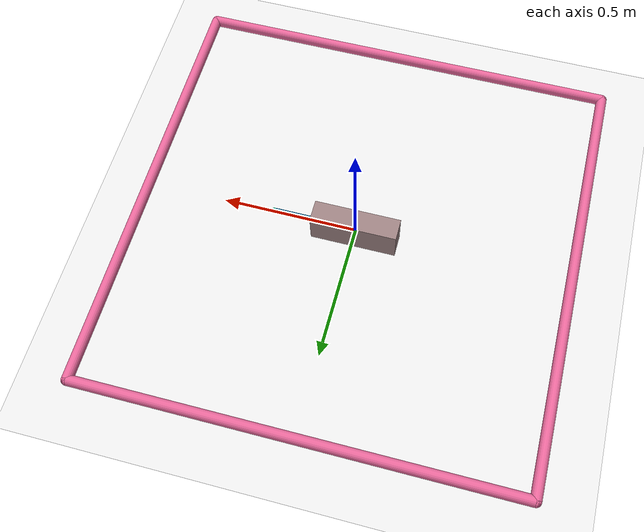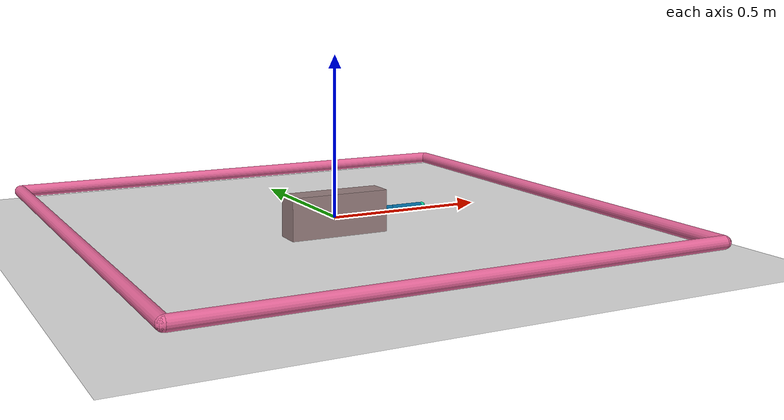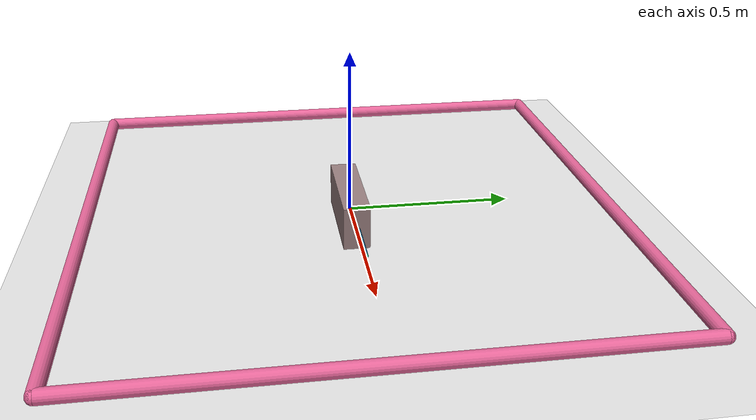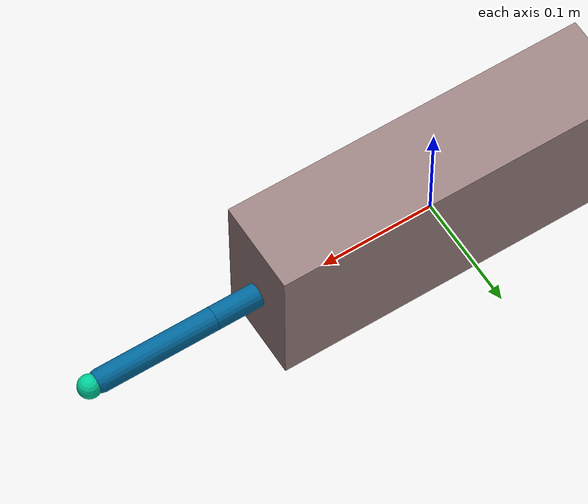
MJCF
<mujoco model="Robot">
	<compiler angle="radian" inertiafromgeom="true"
	              texturedir="textures/"
              meshdir="mesh/visual/"/>
	<default>
		<joint armature="1" damping="1" limited="true"/>
		<geom contype="0" friction="1 0.1 0.1" rgba="0.7 0.7 0 1"/>
	</default>
	<option gravity="0 0 -9.81" integrator="RK4" timestep="0.01"/>

	<asset>
		<mesh file="Part1.stl" name="bread_mesh1" scale="0.012 0.012 0.012"  />
		<mesh file="Part2.stl" name="bread_mesh2" scale="0.012 0.012 0.012"  />
		<mesh file="Part3.stl" name="bread_mesh3" scale="0.012 0.012 0.012"  />
		<mesh file="Part4.stl" name="bread_mesh4" scale="0.012 0.012 0.012"  />
		<mesh file="Part5.stl" name="bread_mesh5" scale="0.012 0.012 0.012"  />
		<mesh file="Part6.stl" name="bread_mesh6" scale="0.012 0.012 0.012"  />
		<mesh file="Part7.stl" name="bread_mesh7" scale="0.012 0.012 0.012"  />
		<mesh file="Part8.stl" name="bread_mesh8" scale="0.012 0.012 0.012"  />
		<mesh file="Part9.stl" name="bread_mesh9" scale="0.012 0.012 0.012"  />

		<!--Textures-->
		<texture type="skybox" builtin="gradient" rgb1="1 1 1" rgb2=".6 .8 1"  width="256" height="256"/>
	</asset>

	<worldbody>
		<!-- Arena -->

		<geom conaffinity="1" contype="1" name="ground" pos="0 0 -0.05" rgba="0.9 0.9 0.9 1" size="1 1 10" type="plane"/>

		<camera euler="0 0 0" fovy="40" name="rgb" pos="0 0 2"></camera>
		<camera euler="0 0 0" fovy="70" name="rgb1" pos="0 0.3 0.15"></camera>
		<camera euler="0.5 -0.5  -0.5" fovy="30" name="rgb2" pos="-1 -1 2"></camera>
		<camera euler="0.65 0.9 0.7" fovy="20" name="rgb3" pos="4.5  -2.0 3"></camera>

		<geom conaffinity="0" fromto="-.8 -.8 .01 .8 -.8 .01" name="sideS" rgba="0.9 0.4 0.6 1" size=".02" type="capsule"/>
		<geom conaffinity="0" fromto=" .8 -.8 .01 .8  .8 .01" name="sideE" rgba="0.9 0.4 0.6 1" size=".02" type="capsule"/>
		<geom conaffinity="0" fromto="-.8  .8 .01 .8  .8 .01" name="sideN" rgba="0.9 0.4 0.6 1" size=".02" type="capsule"/>
		<geom conaffinity="0" fromto="-.8 -.8 .01 -.8 .8 .01" name="sideW" rgba="0.9 0.4 0.6 1" size=".02" type="capsule"/>
		<!-- Arm -->
		<geom conaffinity="0" contype="0" fromto="0 0 0 0 0 0.02" name="root" rgba="0.9 0.4 0.6 1" size=".011" type="cylinder"/>
		<body name="body0" pos="0 0 .01">
			<geom conaffinity="1" contype="1" fromto="0 0 0 0.1 0 0" name="link0" rgba="0.0 0.4 0.6 1" size=".01" type="capsule"/>
			<joint axis="0 0 1" limited="false" name="joint0" pos="0 0 0" type="hinge"/>
			<body name="body1" pos="0.1 0 0">
				<joint axis="0 0 1" limited="true" name="joint1" pos="0 0 0" range="-3.0 3.0" type="hinge"/>
				<geom conaffinity="1" contype="1" fromto="0 0 0 0.1 0 0" name="link1" rgba="0.0 0.4 0.6 1" size=".01" type="capsule"/>
				<body name="body2" pos="0.1 0 0">
					<joint axis="0 0 1" limited="true" name="joint2" pos="0 0 0" range="-3.0 3.0" type="hinge"/>
					<geom conaffinity="1" contype="1" fromto="0 0 0 0.1 0 0" name="link2" rgba="0.0 0.4 0.6 1" size=".01" type="capsule"/>
					<body name="fingertip" pos="0.11 0 0">
						<geom conaffinity="1" contype="1" name="fingertip" pos="0 0 0" rgba="0.0 0.8 0.6 1" size=".01" type="sphere"/>
						<site name="fingertip" size="0.001" pos="0 0 0" rgba="0.0 0.8 0.6 1"/>

					</body>
				</body>
			</body>
		</body>
		<!-- Target -->

		<body name="target" pos="0 0.0 0.01">
			<joint armature="0" axis="1 0 0" damping="0" limited="true" name="target_x" pos="0 0 0" range="-.33 .33" ref="0" stiffness="0" type="slide"/>
			<joint armature="0" axis="0 1 0" damping="0" limited="true" name="target_y" pos="0 0 0" range="-.33 .33" ref="0" stiffness="0" type="slide"/>
			<geom conaffinity="0" contype="0" name="target" pos="0 0 0" rgba="0.9 0.2 0.2 1" size=".005" type="sphere"/>
		</body>

		<body name="rock1">
				<freejoint/>
				<inertial pos="0 0.2 0.01" mass="0.05" diaginertia="422e-001 422e-001 422e-001"/>
				<geom type="box" size=" 0.16 0.04 0.08" friction="0.03 0.03 0.03" rgba=".6 .5 .5 1" />
		</body>

	</worldbody>
	<actuator>
		<motor ctrllimited="true" ctrlrange="-1 1" gear="20.0" joint="joint0"/>
		<motor ctrllimited="true" ctrlrange="-1 1" gear="20.0" joint="joint1"/>
		<motor ctrllimited="true" ctrlrange="-1 1" gear="20.0" joint="joint2"/>
	</actuator>

	<sensor>
		<velocimeter name="tar_vel" site="fingertip"/>
		<accelerometer  name="tar_acc" site="fingertip"/>
		<force name="tar_touch" site="fingertip"/>
		<torque name="tar_torque" site="fingertip"/>
	</sensor>
</mujoco>
